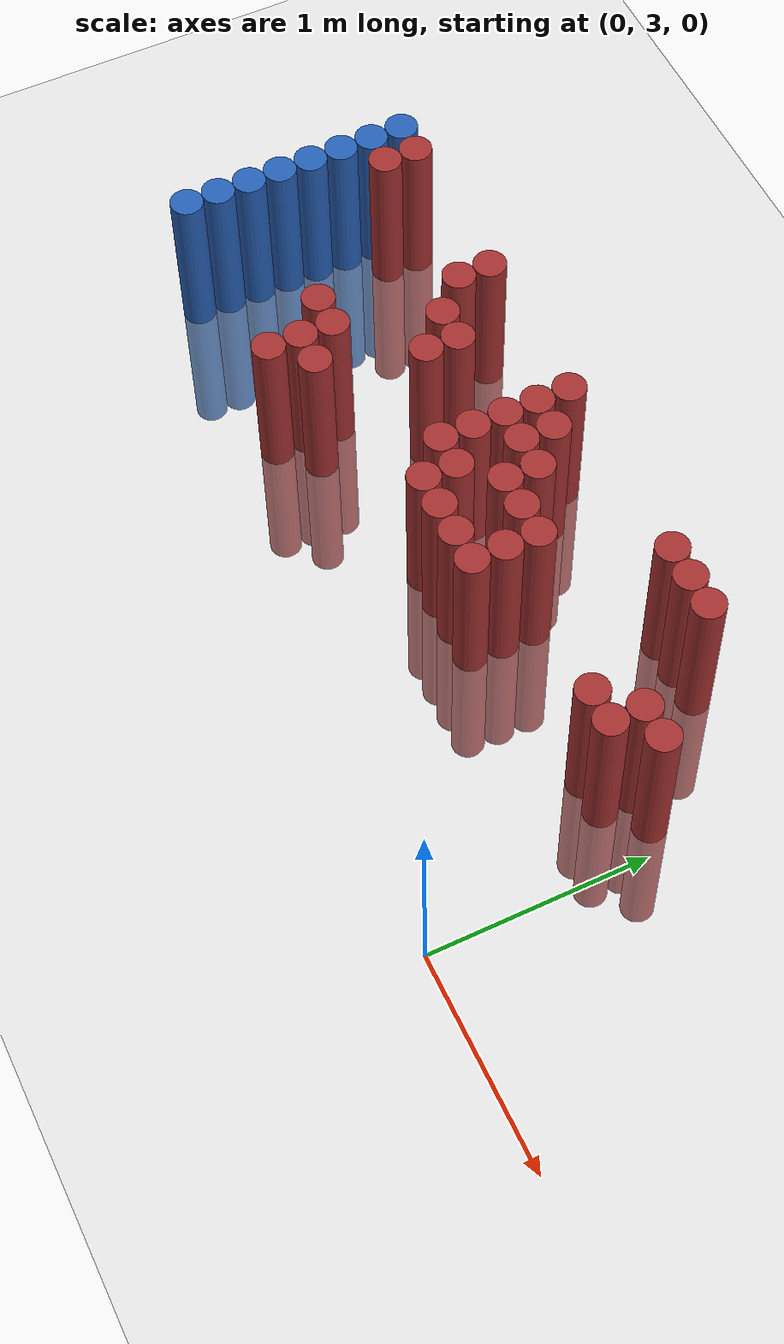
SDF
<sdf version="1.6">
 <world name="default">
  <model name="ground_plane">
   <static>1</static>
   <link name="link">
    <collision name="collision">
     <geometry><plane><normal>0 0 1</normal><size>100 100</size></plane></geometry>
     <surface><friction><ode><mu>100</mu><mu2>50</mu2></ode></friction></surface>
    </collision>
    <visual name="visual">
     <cast_shadows>0</cast_shadows>
     <geometry><plane><normal>0 0 1</normal><size>100 100</size></plane></geometry>
     <material>
      <script><uri>file://media/materials/scripts/gazebo.material</uri><name>Gazebo/Grey</name></script>
     </material>
    </visual>
   </link>
  </model>
  <model name="unit_cylinder_161">
   <static>1</static>
   <pose>-3.425000 3.475000 0.000000 0.000000 0.000000 0.000000</pose>
   <link name="link">
    <inertial>
     <mass>1</mass>
     <inertia><ixx>0.145833</ixx><ixy>0</ixy><ixz>0</ixz><iyy>0.145833</iyy><iyz>0</iyz><izz>0.125</izz></inertia>
    </inertial>
    <collision name="collision">
     <geometry><cylinder><radius>0.075000</radius><length>1.5</length></cylinder></geometry>
    </collision>
    <visual name="visual">
     <geometry><cylinder><radius>0.075000</radius><length>1.5</length></cylinder></geometry>
     <material>
      <ambient>0.152000 0.379000 0.720000 1</ambient>
      <diffuse>0.152000 0.379000 0.720000 1</diffuse>
     </material>
     <material>
      <script><name>Gazebo/Grey</name><uri>file://media/materials/scripts/gazebo.material</uri></script>
     </material>
    </visual>
   </link>
  </model>
  <model name="unit_cylinder_163">
   <static>1</static>
   <pose>-3.425000 3.625000 0.000000 0.000000 0.000000 0.000000</pose>
   <link name="link">
    <inertial>
     <mass>1</mass>
     <inertia><ixx>0.145833</ixx><ixy>0</ixy><ixz>0</ixz><iyy>0.145833</iyy><iyz>0</iyz><izz>0.125</izz></inertia>
    </inertial>
    <collision name="collision">
     <geometry><cylinder><radius>0.075000</radius><length>1.5</length></cylinder></geometry>
    </collision>
    <visual name="visual">
     <geometry><cylinder><radius>0.075000</radius><length>1.5</length></cylinder></geometry>
     <material>
      <ambient>0.152000 0.379000 0.720000 1</ambient>
      <diffuse>0.152000 0.379000 0.720000 1</diffuse>
     </material>
     <material>
      <script><name>Gazebo/Grey</name><uri>file://media/materials/scripts/gazebo.material</uri></script>
     </material>
    </visual>
   </link>
  </model>
  <model name="unit_cylinder_165">
   <static>1</static>
   <pose>-3.425000 3.775000 0.000000 0.000000 0.000000 0.000000</pose>
   <link name="link">
    <inertial>
     <mass>1</mass>
     <inertia><ixx>0.145833</ixx><ixy>0</ixy><ixz>0</ixz><iyy>0.145833</iyy><iyz>0</iyz><izz>0.125</izz></inertia>
    </inertial>
    <collision name="collision">
     <geometry><cylinder><radius>0.075000</radius><length>1.5</length></cylinder></geometry>
    </collision>
    <visual name="visual">
     <geometry><cylinder><radius>0.075000</radius><length>1.5</length></cylinder></geometry>
     <material>
      <ambient>0.152000 0.379000 0.720000 1</ambient>
      <diffuse>0.152000 0.379000 0.720000 1</diffuse>
     </material>
     <material>
      <script><name>Gazebo/Grey</name><uri>file://media/materials/scripts/gazebo.material</uri></script>
     </material>
    </visual>
   </link>
  </model>
  <model name="unit_cylinder_167">
   <static>1</static>
   <pose>-3.425000 3.925000 0.000000 0.000000 0.000000 0.000000</pose>
   <link name="link">
    <inertial>
     <mass>1</mass>
     <inertia><ixx>0.145833</ixx><ixy>0</ixy><ixz>0</ixz><iyy>0.145833</iyy><iyz>0</iyz><izz>0.125</izz></inertia>
    </inertial>
    <collision name="collision">
     <geometry><cylinder><radius>0.075000</radius><length>1.5</length></cylinder></geometry>
    </collision>
    <visual name="visual">
     <geometry><cylinder><radius>0.075000</radius><length>1.5</length></cylinder></geometry>
     <material>
      <ambient>0.152000 0.379000 0.720000 1</ambient>
      <diffuse>0.152000 0.379000 0.720000 1</diffuse>
     </material>
     <material>
      <script><name>Gazebo/Grey</name><uri>file://media/materials/scripts/gazebo.material</uri></script>
     </material>
    </visual>
   </link>
  </model>
  <model name="unit_cylinder_169">
   <static>1</static>
   <pose>-3.425000 4.075000 0.000000 0.000000 0.000000 0.000000</pose>
   <link name="link">
    <inertial>
     <mass>1</mass>
     <inertia><ixx>0.145833</ixx><ixy>0</ixy><ixz>0</ixz><iyy>0.145833</iyy><iyz>0</iyz><izz>0.125</izz></inertia>
    </inertial>
    <collision name="collision">
     <geometry><cylinder><radius>0.075000</radius><length>1.5</length></cylinder></geometry>
    </collision>
    <visual name="visual">
     <geometry><cylinder><radius>0.075000</radius><length>1.5</length></cylinder></geometry>
     <material>
      <ambient>0.152000 0.379000 0.720000 1</ambient>
      <diffuse>0.152000 0.379000 0.720000 1</diffuse>
     </material>
     <material>
      <script><name>Gazebo/Grey</name><uri>file://media/materials/scripts/gazebo.material</uri></script>
     </material>
    </visual>
   </link>
  </model>
  <model name="unit_cylinder_171">
   <static>1</static>
   <pose>-3.425000 4.225000 0.000000 0.000000 0.000000 0.000000</pose>
   <link name="link">
    <inertial>
     <mass>1</mass>
     <inertia><ixx>0.145833</ixx><ixy>0</ixy><ixz>0</ixz><iyy>0.145833</iyy><iyz>0</iyz><izz>0.125</izz></inertia>
    </inertial>
    <collision name="collision">
     <geometry><cylinder><radius>0.075000</radius><length>1.5</length></cylinder></geometry>
    </collision>
    <visual name="visual">
     <geometry><cylinder><radius>0.075000</radius><length>1.5</length></cylinder></geometry>
     <material>
      <ambient>0.152000 0.379000 0.720000 1</ambient>
      <diffuse>0.152000 0.379000 0.720000 1</diffuse>
     </material>
     <material>
      <script><name>Gazebo/Grey</name><uri>file://media/materials/scripts/gazebo.material</uri></script>
     </material>
    </visual>
   </link>
  </model>
  <model name="unit_cylinder_173">
   <static>1</static>
   <pose>-3.425000 4.375000 0.000000 0.000000 0.000000 0.000000</pose>
   <link name="link">
    <inertial>
     <mass>1</mass>
     <inertia><ixx>0.145833</ixx><ixy>0</ixy><ixz>0</ixz><iyy>0.145833</iyy><iyz>0</iyz><izz>0.125</izz></inertia>
    </inertial>
    <collision name="collision">
     <geometry><cylinder><radius>0.075000</radius><length>1.5</length></cylinder></geometry>
    </collision>
    <visual name="visual">
     <geometry><cylinder><radius>0.075000</radius><length>1.5</length></cylinder></geometry>
     <material>
      <ambient>0.152000 0.379000 0.720000 1</ambient>
      <diffuse>0.152000 0.379000 0.720000 1</diffuse>
     </material>
     <material>
      <script><name>Gazebo/Grey</name><uri>file://media/materials/scripts/gazebo.material</uri></script>
     </material>
    </visual>
   </link>
  </model>
  <model name="unit_cylinder_175">
   <static>1</static>
   <pose>-3.425000 4.525000 0.000000 0.000000 0.000000 0.000000</pose>
   <link name="link">
    <inertial>
     <mass>1</mass>
     <inertia><ixx>0.145833</ixx><ixy>0</ixy><ixz>0</ixz><iyy>0.145833</iyy><iyz>0</iyz><izz>0.125</izz></inertia>
    </inertial>
    <collision name="collision">
     <geometry><cylinder><radius>0.075000</radius><length>1.5</length></cylinder></geometry>
    </collision>
    <visual name="visual">
     <geometry><cylinder><radius>0.075000</radius><length>1.5</length></cylinder></geometry>
     <material>
      <ambient>0.152000 0.379000 0.720000 1</ambient>
      <diffuse>0.152000 0.379000 0.720000 1</diffuse>
     </material>
     <material>
      <script><name>Gazebo/Grey</name><uri>file://media/materials/scripts/gazebo.material</uri></script>
     </material>
    </visual>
   </link>
  </model>
  <model name="unit_cylinder_244">
   <static>1</static>
   <pose>-3.425000 3.475000 0.000000 0.000000 0.000000 0.000000</pose>
   <link name="link">
    <inertial>
     <mass>1</mass>
     <inertia><ixx>0.145833</ixx><ixy>0</ixy><ixz>0</ixz><iyy>0.145833</iyy><iyz>0</iyz><izz>0.125</izz></inertia>
    </inertial>
    <collision name="collision">
     <geometry><cylinder><radius>0.075000</radius><length>1.5</length></cylinder></geometry>
    </collision>
    <visual name="visual">
     <geometry><cylinder><radius>0.075000</radius><length>1.5</length></cylinder></geometry>
     <material>
      <ambient>0.152000 0.379000 0.720000 1</ambient>
      <diffuse>0.152000 0.379000 0.720000 1</diffuse>
     </material>
     <material>
      <script><name>Gazebo/Grey</name><uri>file://media/materials/scripts/gazebo.material</uri></script>
     </material>
    </visual>
   </link>
  </model>
  <model name="unit_cylinder_245">
   <static>1</static>
   <pose>-3.425000 3.625000 0.000000 0.000000 0.000000 0.000000</pose>
   <link name="link">
    <inertial>
     <mass>1</mass>
     <inertia><ixx>0.145833</ixx><ixy>0</ixy><ixz>0</ixz><iyy>0.145833</iyy><iyz>0</iyz><izz>0.125</izz></inertia>
    </inertial>
    <collision name="collision">
     <geometry><cylinder><radius>0.075000</radius><length>1.5</length></cylinder></geometry>
    </collision>
    <visual name="visual">
     <geometry><cylinder><radius>0.075000</radius><length>1.5</length></cylinder></geometry>
     <material>
      <ambient>0.152000 0.379000 0.720000 1</ambient>
      <diffuse>0.152000 0.379000 0.720000 1</diffuse>
     </material>
     <material>
      <script><name>Gazebo/Grey</name><uri>file://media/materials/scripts/gazebo.material</uri></script>
     </material>
    </visual>
   </link>
  </model>
  <model name="unit_cylinder_246">
   <static>1</static>
   <pose>-3.425000 3.775000 0.000000 0.000000 0.000000 0.000000</pose>
   <link name="link">
    <inertial>
     <mass>1</mass>
     <inertia><ixx>0.145833</ixx><ixy>0</ixy><ixz>0</ixz><iyy>0.145833</iyy><iyz>0</iyz><izz>0.125</izz></inertia>
    </inertial>
    <collision name="collision">
     <geometry><cylinder><radius>0.075000</radius><length>1.5</length></cylinder></geometry>
    </collision>
    <visual name="visual">
     <geometry><cylinder><radius>0.075000</radius><length>1.5</length></cylinder></geometry>
     <material>
      <ambient>0.152000 0.379000 0.720000 1</ambient>
      <diffuse>0.152000 0.379000 0.720000 1</diffuse>
     </material>
     <material>
      <script><name>Gazebo/Grey</name><uri>file://media/materials/scripts/gazebo.material</uri></script>
     </material>
    </visual>
   </link>
  </model>
  <model name="unit_cylinder_247">
   <static>1</static>
   <pose>-3.425000 3.925000 0.000000 0.000000 0.000000 0.000000</pose>
   <link name="link">
    <inertial>
     <mass>1</mass>
     <inertia><ixx>0.145833</ixx><ixy>0</ixy><ixz>0</ixz><iyy>0.145833</iyy><iyz>0</iyz><izz>0.125</izz></inertia>
    </inertial>
    <collision name="collision">
     <geometry><cylinder><radius>0.075000</radius><length>1.5</length></cylinder></geometry>
    </collision>
    <visual name="visual">
     <geometry><cylinder><radius>0.075000</radius><length>1.5</length></cylinder></geometry>
     <material>
      <ambient>0.152000 0.379000 0.720000 1</ambient>
      <diffuse>0.152000 0.379000 0.720000 1</diffuse>
     </material>
     <material>
      <script><name>Gazebo/Grey</name><uri>file://media/materials/scripts/gazebo.material</uri></script>
     </material>
    </visual>
   </link>
  </model>
  <model name="unit_cylinder_248">
   <static>1</static>
   <pose>-3.425000 4.075000 0.000000 0.000000 0.000000 0.000000</pose>
   <link name="link">
    <inertial>
     <mass>1</mass>
     <inertia><ixx>0.145833</ixx><ixy>0</ixy><ixz>0</ixz><iyy>0.145833</iyy><iyz>0</iyz><izz>0.125</izz></inertia>
    </inertial>
    <collision name="collision">
     <geometry><cylinder><radius>0.075000</radius><length>1.5</length></cylinder></geometry>
    </collision>
    <visual name="visual">
     <geometry><cylinder><radius>0.075000</radius><length>1.5</length></cylinder></geometry>
     <material>
      <ambient>0.152000 0.379000 0.720000 1</ambient>
      <diffuse>0.152000 0.379000 0.720000 1</diffuse>
     </material>
     <material>
      <script><name>Gazebo/Grey</name><uri>file://media/materials/scripts/gazebo.material</uri></script>
     </material>
    </visual>
   </link>
  </model>
  <model name="unit_cylinder_249">
   <static>1</static>
   <pose>-3.425000 4.225000 0.000000 0.000000 0.000000 0.000000</pose>
   <link name="link">
    <inertial>
     <mass>1</mass>
     <inertia><ixx>0.145833</ixx><ixy>0</ixy><ixz>0</ixz><iyy>0.145833</iyy><iyz>0</iyz><izz>0.125</izz></inertia>
    </inertial>
    <collision name="collision">
     <geometry><cylinder><radius>0.075000</radius><length>1.5</length></cylinder></geometry>
    </collision>
    <visual name="visual">
     <geometry><cylinder><radius>0.075000</radius><length>1.5</length></cylinder></geometry>
     <material>
      <ambient>0.152000 0.379000 0.720000 1</ambient>
      <diffuse>0.152000 0.379000 0.720000 1</diffuse>
     </material>
     <material>
      <script><name>Gazebo/Grey</name><uri>file://media/materials/scripts/gazebo.material</uri></script>
     </material>
    </visual>
   </link>
  </model>
  <model name="unit_cylinder_250">
   <static>1</static>
   <pose>-3.425000 4.375000 0.000000 0.000000 0.000000 0.000000</pose>
   <link name="link">
    <inertial>
     <mass>1</mass>
     <inertia><ixx>0.145833</ixx><ixy>0</ixy><ixz>0</ixz><iyy>0.145833</iyy><iyz>0</iyz><izz>0.125</izz></inertia>
    </inertial>
    <collision name="collision">
     <geometry><cylinder><radius>0.075000</radius><length>1.5</length></cylinder></geometry>
    </collision>
    <visual name="visual">
     <geometry><cylinder><radius>0.075000</radius><length>1.5</length></cylinder></geometry>
     <material>
      <ambient>0.152000 0.379000 0.720000 1</ambient>
      <diffuse>0.152000 0.379000 0.720000 1</diffuse>
     </material>
     <material>
      <script><name>Gazebo/Grey</name><uri>file://media/materials/scripts/gazebo.material</uri></script>
     </material>
    </visual>
   </link>
  </model>
  <model name="unit_cylinder_251">
   <static>1</static>
   <pose>-3.425000 4.525000 0.000000 0.000000 0.000000 0.000000</pose>
   <link name="link">
    <inertial>
     <mass>1</mass>
     <inertia><ixx>0.145833</ixx><ixy>0</ixy><ixz>0</ixz><iyy>0.145833</iyy><iyz>0</iyz><izz>0.125</izz></inertia>
    </inertial>
    <collision name="collision">
     <geometry><cylinder><radius>0.075000</radius><length>1.5</length></cylinder></geometry>
    </collision>
    <visual name="visual">
     <geometry><cylinder><radius>0.075000</radius><length>1.5</length></cylinder></geometry>
     <material>
      <ambient>0.152000 0.379000 0.720000 1</ambient>
      <diffuse>0.152000 0.379000 0.720000 1</diffuse>
     </material>
     <material>
      <script><name>Gazebo/Grey</name><uri>file://media/materials/scripts/gazebo.material</uri></script>
     </material>
    </visual>
   </link>
  </model>
  <model name="unit_cylinder_267">
   <static>1</static>
   <pose>-3.275000 4.375000 0.000000 0.000000 0.000000 0.000000</pose>
   <link name="link">
    <inertial>
     <mass>1</mass>
     <inertia><ixx>0.145833</ixx><ixy>0</ixy><ixz>0</ixz><iyy>0.145833</iyy><iyz>0</iyz><izz>0.125</izz></inertia>
    </inertial>
    <collision name="collision">
     <geometry><cylinder><radius>0.075000</radius><length>1.5</length></cylinder></geometry>
    </collision>
    <visual name="visual">
     <geometry><cylinder><radius>0.075000</radius><length>1.5</length></cylinder></geometry>
     <material>
      <ambient>0.648000 0.192000 0.192000 1</ambient>
      <diffuse>0.648000 0.192000 0.192000 1</diffuse>
     </material>
     <material>
      <script><name>Gazebo/Grey</name><uri>file://media/materials/scripts/gazebo.material</uri></script>
     </material>
    </visual>
   </link>
  </model>
  <model name="unit_cylinder_268">
   <static>1</static>
   <pose>-3.275000 4.525000 0.000000 0.000000 0.000000 0.000000</pose>
   <link name="link">
    <inertial>
     <mass>1</mass>
     <inertia><ixx>0.145833</ixx><ixy>0</ixy><ixz>0</ixz><iyy>0.145833</iyy><iyz>0</iyz><izz>0.125</izz></inertia>
    </inertial>
    <collision name="collision">
     <geometry><cylinder><radius>0.075000</radius><length>1.5</length></cylinder></geometry>
    </collision>
    <visual name="visual">
     <geometry><cylinder><radius>0.075000</radius><length>1.5</length></cylinder></geometry>
     <material>
      <ambient>0.648000 0.192000 0.192000 1</ambient>
      <diffuse>0.648000 0.192000 0.192000 1</diffuse>
     </material>
     <material>
      <script><name>Gazebo/Grey</name><uri>file://media/materials/scripts/gazebo.material</uri></script>
     </material>
    </visual>
   </link>
  </model>
  <model name="unit_cylinder_300">
   <static>1</static>
   <pose>-2.675000 3.775000 0.000000 0.000000 0.000000 0.000000</pose>
   <link name="link">
    <inertial>
     <mass>1</mass>
     <inertia><ixx>0.145833</ixx><ixy>0</ixy><ixz>0</ixz><iyy>0.145833</iyy><iyz>0</iyz><izz>0.125</izz></inertia>
    </inertial>
    <collision name="collision">
     <geometry><cylinder><radius>0.075000</radius><length>1.5</length></cylinder></geometry>
    </collision>
    <visual name="visual">
     <geometry><cylinder><radius>0.075000</radius><length>1.5</length></cylinder></geometry>
     <material>
      <ambient>0.648000 0.192000 0.192000 1</ambient>
      <diffuse>0.648000 0.192000 0.192000 1</diffuse>
     </material>
     <material>
      <script><name>Gazebo/Grey</name><uri>file://media/materials/scripts/gazebo.material</uri></script>
     </material>
    </visual>
   </link>
  </model>
  <model name="unit_cylinder_308">
   <static>1</static>
   <pose>-2.525000 3.475000 0.000000 0.000000 0.000000 0.000000</pose>
   <link name="link">
    <inertial>
     <mass>1</mass>
     <inertia><ixx>0.145833</ixx><ixy>0</ixy><ixz>0</ixz><iyy>0.145833</iyy><iyz>0</iyz><izz>0.125</izz></inertia>
    </inertial>
    <collision name="collision">
     <geometry><cylinder><radius>0.075000</radius><length>1.5</length></cylinder></geometry>
    </collision>
    <visual name="visual">
     <geometry><cylinder><radius>0.075000</radius><length>1.5</length></cylinder></geometry>
     <material>
      <ambient>0.648000 0.192000 0.192000 1</ambient>
      <diffuse>0.648000 0.192000 0.192000 1</diffuse>
     </material>
     <material>
      <script><name>Gazebo/Grey</name><uri>file://media/materials/scripts/gazebo.material</uri></script>
     </material>
    </visual>
   </link>
  </model>
  <model name="unit_cylinder_309">
   <static>1</static>
   <pose>-2.525000 3.625000 0.000000 0.000000 0.000000 0.000000</pose>
   <link name="link">
    <inertial>
     <mass>1</mass>
     <inertia><ixx>0.145833</ixx><ixy>0</ixy><ixz>0</ixz><iyy>0.145833</iyy><iyz>0</iyz><izz>0.125</izz></inertia>
    </inertial>
    <collision name="collision">
     <geometry><cylinder><radius>0.075000</radius><length>1.5</length></cylinder></geometry>
    </collision>
    <visual name="visual">
     <geometry><cylinder><radius>0.075000</radius><length>1.5</length></cylinder></geometry>
     <material>
      <ambient>0.648000 0.192000 0.192000 1</ambient>
      <diffuse>0.648000 0.192000 0.192000 1</diffuse>
     </material>
     <material>
      <script><name>Gazebo/Grey</name><uri>file://media/materials/scripts/gazebo.material</uri></script>
     </material>
    </visual>
   </link>
  </model>
  <model name="unit_cylinder_310">
   <static>1</static>
   <pose>-2.525000 3.775000 0.000000 0.000000 0.000000 0.000000</pose>
   <link name="link">
    <inertial>
     <mass>1</mass>
     <inertia><ixx>0.145833</ixx><ixy>0</ixy><ixz>0</ixz><iyy>0.145833</iyy><iyz>0</iyz><izz>0.125</izz></inertia>
    </inertial>
    <collision name="collision">
     <geometry><cylinder><radius>0.075000</radius><length>1.5</length></cylinder></geometry>
    </collision>
    <visual name="visual">
     <geometry><cylinder><radius>0.075000</radius><length>1.5</length></cylinder></geometry>
     <material>
      <ambient>0.648000 0.192000 0.192000 1</ambient>
      <diffuse>0.648000 0.192000 0.192000 1</diffuse>
     </material>
     <material>
      <script><name>Gazebo/Grey</name><uri>file://media/materials/scripts/gazebo.material</uri></script>
     </material>
    </visual>
   </link>
  </model>
  <model name="unit_cylinder_311">
   <static>1</static>
   <pose>-2.525000 4.375000 0.000000 0.000000 0.000000 0.000000</pose>
   <link name="link">
    <inertial>
     <mass>1</mass>
     <inertia><ixx>0.145833</ixx><ixy>0</ixy><ixz>0</ixz><iyy>0.145833</iyy><iyz>0</iyz><izz>0.125</izz></inertia>
    </inertial>
    <collision name="collision">
     <geometry><cylinder><radius>0.075000</radius><length>1.5</length></cylinder></geometry>
    </collision>
    <visual name="visual">
     <geometry><cylinder><radius>0.075000</radius><length>1.5</length></cylinder></geometry>
     <material>
      <ambient>0.648000 0.192000 0.192000 1</ambient>
      <diffuse>0.648000 0.192000 0.192000 1</diffuse>
     </material>
     <material>
      <script><name>Gazebo/Grey</name><uri>file://media/materials/scripts/gazebo.material</uri></script>
     </material>
    </visual>
   </link>
  </model>
  <model name="unit_cylinder_312">
   <static>1</static>
   <pose>-2.525000 4.525000 0.000000 0.000000 0.000000 0.000000</pose>
   <link name="link">
    <inertial>
     <mass>1</mass>
     <inertia><ixx>0.145833</ixx><ixy>0</ixy><ixz>0</ixz><iyy>0.145833</iyy><iyz>0</iyz><izz>0.125</izz></inertia>
    </inertial>
    <collision name="collision">
     <geometry><cylinder><radius>0.075000</radius><length>1.5</length></cylinder></geometry>
    </collision>
    <visual name="visual">
     <geometry><cylinder><radius>0.075000</radius><length>1.5</length></cylinder></geometry>
     <material>
      <ambient>0.648000 0.192000 0.192000 1</ambient>
      <diffuse>0.648000 0.192000 0.192000 1</diffuse>
     </material>
     <material>
      <script><name>Gazebo/Grey</name><uri>file://media/materials/scripts/gazebo.material</uri></script>
     </material>
    </visual>
   </link>
  </model>
  <model name="unit_cylinder_316">
   <static>1</static>
   <pose>-2.375000 3.625000 0.000000 0.000000 0.000000 0.000000</pose>
   <link name="link">
    <inertial>
     <mass>1</mass>
     <inertia><ixx>0.145833</ixx><ixy>0</ixy><ixz>0</ixz><iyy>0.145833</iyy><iyz>0</iyz><izz>0.125</izz></inertia>
    </inertial>
    <collision name="collision">
     <geometry><cylinder><radius>0.075000</radius><length>1.5</length></cylinder></geometry>
    </collision>
    <visual name="visual">
     <geometry><cylinder><radius>0.075000</radius><length>1.5</length></cylinder></geometry>
     <material>
      <ambient>0.648000 0.192000 0.192000 1</ambient>
      <diffuse>0.648000 0.192000 0.192000 1</diffuse>
     </material>
     <material>
      <script><name>Gazebo/Grey</name><uri>file://media/materials/scripts/gazebo.material</uri></script>
     </material>
    </visual>
   </link>
  </model>
  <model name="unit_cylinder_317">
   <static>1</static>
   <pose>-2.375000 4.225000 0.000000 0.000000 0.000000 0.000000</pose>
   <link name="link">
    <inertial>
     <mass>1</mass>
     <inertia><ixx>0.145833</ixx><ixy>0</ixy><ixz>0</ixz><iyy>0.145833</iyy><iyz>0</iyz><izz>0.125</izz></inertia>
    </inertial>
    <collision name="collision">
     <geometry><cylinder><radius>0.075000</radius><length>1.5</length></cylinder></geometry>
    </collision>
    <visual name="visual">
     <geometry><cylinder><radius>0.075000</radius><length>1.5</length></cylinder></geometry>
     <material>
      <ambient>0.648000 0.192000 0.192000 1</ambient>
      <diffuse>0.648000 0.192000 0.192000 1</diffuse>
     </material>
     <material>
      <script><name>Gazebo/Grey</name><uri>file://media/materials/scripts/gazebo.material</uri></script>
     </material>
    </visual>
   </link>
  </model>
  <model name="unit_cylinder_318">
   <static>1</static>
   <pose>-2.225000 4.075000 0.000000 0.000000 0.000000 0.000000</pose>
   <link name="link">
    <inertial>
     <mass>1</mass>
     <inertia><ixx>0.145833</ixx><ixy>0</ixy><ixz>0</ixz><iyy>0.145833</iyy><iyz>0</iyz><izz>0.125</izz></inertia>
    </inertial>
    <collision name="collision">
     <geometry><cylinder><radius>0.075000</radius><length>1.5</length></cylinder></geometry>
    </collision>
    <visual name="visual">
     <geometry><cylinder><radius>0.075000</radius><length>1.5</length></cylinder></geometry>
     <material>
      <ambient>0.648000 0.192000 0.192000 1</ambient>
      <diffuse>0.648000 0.192000 0.192000 1</diffuse>
     </material>
     <material>
      <script><name>Gazebo/Grey</name><uri>file://media/materials/scripts/gazebo.material</uri></script>
     </material>
    </visual>
   </link>
  </model>
  <model name="unit_cylinder_319">
   <static>1</static>
   <pose>-2.225000 4.225000 0.000000 0.000000 0.000000 0.000000</pose>
   <link name="link">
    <inertial>
     <mass>1</mass>
     <inertia><ixx>0.145833</ixx><ixy>0</ixy><ixz>0</ixz><iyy>0.145833</iyy><iyz>0</iyz><izz>0.125</izz></inertia>
    </inertial>
    <collision name="collision">
     <geometry><cylinder><radius>0.075000</radius><length>1.5</length></cylinder></geometry>
    </collision>
    <visual name="visual">
     <geometry><cylinder><radius>0.075000</radius><length>1.5</length></cylinder></geometry>
     <material>
      <ambient>0.648000 0.192000 0.192000 1</ambient>
      <diffuse>0.648000 0.192000 0.192000 1</diffuse>
     </material>
     <material>
      <script><name>Gazebo/Grey</name><uri>file://media/materials/scripts/gazebo.material</uri></script>
     </material>
    </visual>
   </link>
  </model>
  <model name="unit_cylinder_320">
   <static>1</static>
   <pose>-1.775000 3.925000 0.000000 0.000000 0.000000 0.000000</pose>
   <link name="link">
    <inertial>
     <mass>1</mass>
     <inertia><ixx>0.145833</ixx><ixy>0</ixy><ixz>0</ixz><iyy>0.145833</iyy><iyz>0</iyz><izz>0.125</izz></inertia>
    </inertial>
    <collision name="collision">
     <geometry><cylinder><radius>0.075000</radius><length>1.5</length></cylinder></geometry>
    </collision>
    <visual name="visual">
     <geometry><cylinder><radius>0.075000</radius><length>1.5</length></cylinder></geometry>
     <material>
      <ambient>0.648000 0.192000 0.192000 1</ambient>
      <diffuse>0.648000 0.192000 0.192000 1</diffuse>
     </material>
     <material>
      <script><name>Gazebo/Grey</name><uri>file://media/materials/scripts/gazebo.material</uri></script>
     </material>
    </visual>
   </link>
  </model>
  <model name="unit_cylinder_321">
   <static>1</static>
   <pose>-1.775000 4.075000 0.000000 0.000000 0.000000 0.000000</pose>
   <link name="link">
    <inertial>
     <mass>1</mass>
     <inertia><ixx>0.145833</ixx><ixy>0</ixy><ixz>0</ixz><iyy>0.145833</iyy><iyz>0</iyz><izz>0.125</izz></inertia>
    </inertial>
    <collision name="collision">
     <geometry><cylinder><radius>0.075000</radius><length>1.5</length></cylinder></geometry>
    </collision>
    <visual name="visual">
     <geometry><cylinder><radius>0.075000</radius><length>1.5</length></cylinder></geometry>
     <material>
      <ambient>0.648000 0.192000 0.192000 1</ambient>
      <diffuse>0.648000 0.192000 0.192000 1</diffuse>
     </material>
     <material>
      <script><name>Gazebo/Grey</name><uri>file://media/materials/scripts/gazebo.material</uri></script>
     </material>
    </visual>
   </link>
  </model>
  <model name="unit_cylinder_322">
   <static>1</static>
   <pose>-1.775000 4.225000 0.000000 0.000000 0.000000 0.000000</pose>
   <link name="link">
    <inertial>
     <mass>1</mass>
     <inertia><ixx>0.145833</ixx><ixy>0</ixy><ixz>0</ixz><iyy>0.145833</iyy><iyz>0</iyz><izz>0.125</izz></inertia>
    </inertial>
    <collision name="collision">
     <geometry><cylinder><radius>0.075000</radius><length>1.5</length></cylinder></geometry>
    </collision>
    <visual name="visual">
     <geometry><cylinder><radius>0.075000</radius><length>1.5</length></cylinder></geometry>
     <material>
      <ambient>0.648000 0.192000 0.192000 1</ambient>
      <diffuse>0.648000 0.192000 0.192000 1</diffuse>
     </material>
     <material>
      <script><name>Gazebo/Grey</name><uri>file://media/materials/scripts/gazebo.material</uri></script>
     </material>
    </visual>
   </link>
  </model>
  <model name="unit_cylinder_323">
   <static>1</static>
   <pose>-1.775000 4.375000 0.000000 0.000000 0.000000 0.000000</pose>
   <link name="link">
    <inertial>
     <mass>1</mass>
     <inertia><ixx>0.145833</ixx><ixy>0</ixy><ixz>0</ixz><iyy>0.145833</iyy><iyz>0</iyz><izz>0.125</izz></inertia>
    </inertial>
    <collision name="collision">
     <geometry><cylinder><radius>0.075000</radius><length>1.5</length></cylinder></geometry>
    </collision>
    <visual name="visual">
     <geometry><cylinder><radius>0.075000</radius><length>1.5</length></cylinder></geometry>
     <material>
      <ambient>0.648000 0.192000 0.192000 1</ambient>
      <diffuse>0.648000 0.192000 0.192000 1</diffuse>
     </material>
     <material>
      <script><name>Gazebo/Grey</name><uri>file://media/materials/scripts/gazebo.material</uri></script>
     </material>
    </visual>
   </link>
  </model>
  <model name="unit_cylinder_324">
   <static>1</static>
   <pose>-1.775000 4.525000 0.000000 0.000000 0.000000 0.000000</pose>
   <link name="link">
    <inertial>
     <mass>1</mass>
     <inertia><ixx>0.145833</ixx><ixy>0</ixy><ixz>0</ixz><iyy>0.145833</iyy><iyz>0</iyz><izz>0.125</izz></inertia>
    </inertial>
    <collision name="collision">
     <geometry><cylinder><radius>0.075000</radius><length>1.5</length></cylinder></geometry>
    </collision>
    <visual name="visual">
     <geometry><cylinder><radius>0.075000</radius><length>1.5</length></cylinder></geometry>
     <material>
      <ambient>0.648000 0.192000 0.192000 1</ambient>
      <diffuse>0.648000 0.192000 0.192000 1</diffuse>
     </material>
     <material>
      <script><name>Gazebo/Grey</name><uri>file://media/materials/scripts/gazebo.material</uri></script>
     </material>
    </visual>
   </link>
  </model>
  <model name="unit_cylinder_325">
   <static>1</static>
   <pose>-1.625000 3.775000 0.000000 0.000000 0.000000 0.000000</pose>
   <link name="link">
    <inertial>
     <mass>1</mass>
     <inertia><ixx>0.145833</ixx><ixy>0</ixy><ixz>0</ixz><iyy>0.145833</iyy><iyz>0</iyz><izz>0.125</izz></inertia>
    </inertial>
    <collision name="collision">
     <geometry><cylinder><radius>0.075000</radius><length>1.5</length></cylinder></geometry>
    </collision>
    <visual name="visual">
     <geometry><cylinder><radius>0.075000</radius><length>1.5</length></cylinder></geometry>
     <material>
      <ambient>0.648000 0.192000 0.192000 1</ambient>
      <diffuse>0.648000 0.192000 0.192000 1</diffuse>
     </material>
     <material>
      <script><name>Gazebo/Grey</name><uri>file://media/materials/scripts/gazebo.material</uri></script>
     </material>
    </visual>
   </link>
  </model>
  <model name="unit_cylinder_326">
   <static>1</static>
   <pose>-1.625000 3.925000 0.000000 0.000000 0.000000 0.000000</pose>
   <link name="link">
    <inertial>
     <mass>1</mass>
     <inertia><ixx>0.145833</ixx><ixy>0</ixy><ixz>0</ixz><iyy>0.145833</iyy><iyz>0</iyz><izz>0.125</izz></inertia>
    </inertial>
    <collision name="collision">
     <geometry><cylinder><radius>0.075000</radius><length>1.5</length></cylinder></geometry>
    </collision>
    <visual name="visual">
     <geometry><cylinder><radius>0.075000</radius><length>1.5</length></cylinder></geometry>
     <material>
      <ambient>0.648000 0.192000 0.192000 1</ambient>
      <diffuse>0.648000 0.192000 0.192000 1</diffuse>
     </material>
     <material>
      <script><name>Gazebo/Grey</name><uri>file://media/materials/scripts/gazebo.material</uri></script>
     </material>
    </visual>
   </link>
  </model>
  <model name="unit_cylinder_327">
   <static>1</static>
   <pose>-1.625000 4.225000 0.000000 0.000000 0.000000 0.000000</pose>
   <link name="link">
    <inertial>
     <mass>1</mass>
     <inertia><ixx>0.145833</ixx><ixy>0</ixy><ixz>0</ixz><iyy>0.145833</iyy><iyz>0</iyz><izz>0.125</izz></inertia>
    </inertial>
    <collision name="collision">
     <geometry><cylinder><radius>0.075000</radius><length>1.5</length></cylinder></geometry>
    </collision>
    <visual name="visual">
     <geometry><cylinder><radius>0.075000</radius><length>1.5</length></cylinder></geometry>
     <material>
      <ambient>0.648000 0.192000 0.192000 1</ambient>
      <diffuse>0.648000 0.192000 0.192000 1</diffuse>
     </material>
     <material>
      <script><name>Gazebo/Grey</name><uri>file://media/materials/scripts/gazebo.material</uri></script>
     </material>
    </visual>
   </link>
  </model>
  <model name="unit_cylinder_328">
   <static>1</static>
   <pose>-1.625000 4.375000 0.000000 0.000000 0.000000 0.000000</pose>
   <link name="link">
    <inertial>
     <mass>1</mass>
     <inertia><ixx>0.145833</ixx><ixy>0</ixy><ixz>0</ixz><iyy>0.145833</iyy><iyz>0</iyz><izz>0.125</izz></inertia>
    </inertial>
    <collision name="collision">
     <geometry><cylinder><radius>0.075000</radius><length>1.5</length></cylinder></geometry>
    </collision>
    <visual name="visual">
     <geometry><cylinder><radius>0.075000</radius><length>1.5</length></cylinder></geometry>
     <material>
      <ambient>0.648000 0.192000 0.192000 1</ambient>
      <diffuse>0.648000 0.192000 0.192000 1</diffuse>
     </material>
     <material>
      <script><name>Gazebo/Grey</name><uri>file://media/materials/scripts/gazebo.material</uri></script>
     </material>
    </visual>
   </link>
  </model>
  <model name="unit_cylinder_330">
   <static>1</static>
   <pose>-1.475000 3.775000 0.000000 0.000000 0.000000 0.000000</pose>
   <link name="link">
    <inertial>
     <mass>1</mass>
     <inertia><ixx>0.145833</ixx><ixy>0</ixy><ixz>0</ixz><iyy>0.145833</iyy><iyz>0</iyz><izz>0.125</izz></inertia>
    </inertial>
    <collision name="collision">
     <geometry><cylinder><radius>0.075000</radius><length>1.5</length></cylinder></geometry>
    </collision>
    <visual name="visual">
     <geometry><cylinder><radius>0.075000</radius><length>1.5</length></cylinder></geometry>
     <material>
      <ambient>0.648000 0.192000 0.192000 1</ambient>
      <diffuse>0.648000 0.192000 0.192000 1</diffuse>
     </material>
     <material>
      <script><name>Gazebo/Grey</name><uri>file://media/materials/scripts/gazebo.material</uri></script>
     </material>
    </visual>
   </link>
  </model>
  <model name="unit_cylinder_331">
   <static>1</static>
   <pose>-1.475000 4.075000 0.000000 0.000000 0.000000 0.000000</pose>
   <link name="link">
    <inertial>
     <mass>1</mass>
     <inertia><ixx>0.145833</ixx><ixy>0</ixy><ixz>0</ixz><iyy>0.145833</iyy><iyz>0</iyz><izz>0.125</izz></inertia>
    </inertial>
    <collision name="collision">
     <geometry><cylinder><radius>0.075000</radius><length>1.5</length></cylinder></geometry>
    </collision>
    <visual name="visual">
     <geometry><cylinder><radius>0.075000</radius><length>1.5</length></cylinder></geometry>
     <material>
      <ambient>0.648000 0.192000 0.192000 1</ambient>
      <diffuse>0.648000 0.192000 0.192000 1</diffuse>
     </material>
     <material>
      <script><name>Gazebo/Grey</name><uri>file://media/materials/scripts/gazebo.material</uri></script>
     </material>
    </visual>
   </link>
  </model>
  <model name="unit_cylinder_332">
   <static>1</static>
   <pose>-1.475000 4.225000 0.000000 0.000000 0.000000 0.000000</pose>
   <link name="link">
    <inertial>
     <mass>1</mass>
     <inertia><ixx>0.145833</ixx><ixy>0</ixy><ixz>0</ixz><iyy>0.145833</iyy><iyz>0</iyz><izz>0.125</izz></inertia>
    </inertial>
    <collision name="collision">
     <geometry><cylinder><radius>0.075000</radius><length>1.5</length></cylinder></geometry>
    </collision>
    <visual name="visual">
     <geometry><cylinder><radius>0.075000</radius><length>1.5</length></cylinder></geometry>
     <material>
      <ambient>0.648000 0.192000 0.192000 1</ambient>
      <diffuse>0.648000 0.192000 0.192000 1</diffuse>
     </material>
     <material>
      <script><name>Gazebo/Grey</name><uri>file://media/materials/scripts/gazebo.material</uri></script>
     </material>
    </visual>
   </link>
  </model>
  <model name="unit_cylinder_335">
   <static>1</static>
   <pose>-1.325000 3.775000 0.000000 0.000000 0.000000 0.000000</pose>
   <link name="link">
    <inertial>
     <mass>1</mass>
     <inertia><ixx>0.145833</ixx><ixy>0</ixy><ixz>0</ixz><iyy>0.145833</iyy><iyz>0</iyz><izz>0.125</izz></inertia>
    </inertial>
    <collision name="collision">
     <geometry><cylinder><radius>0.075000</radius><length>1.5</length></cylinder></geometry>
    </collision>
    <visual name="visual">
     <geometry><cylinder><radius>0.075000</radius><length>1.5</length></cylinder></geometry>
     <material>
      <ambient>0.648000 0.192000 0.192000 1</ambient>
      <diffuse>0.648000 0.192000 0.192000 1</diffuse>
     </material>
     <material>
      <script><name>Gazebo/Grey</name><uri>file://media/materials/scripts/gazebo.material</uri></script>
     </material>
    </visual>
   </link>
  </model>
  <model name="unit_cylinder_336">
   <static>1</static>
   <pose>-1.325000 4.075000 0.000000 0.000000 0.000000 0.000000</pose>
   <link name="link">
    <inertial>
     <mass>1</mass>
     <inertia><ixx>0.145833</ixx><ixy>0</ixy><ixz>0</ixz><iyy>0.145833</iyy><iyz>0</iyz><izz>0.125</izz></inertia>
    </inertial>
    <collision name="collision">
     <geometry><cylinder><radius>0.075000</radius><length>1.5</length></cylinder></geometry>
    </collision>
    <visual name="visual">
     <geometry><cylinder><radius>0.075000</radius><length>1.5</length></cylinder></geometry>
     <material>
      <ambient>0.648000 0.192000 0.192000 1</ambient>
      <diffuse>0.648000 0.192000 0.192000 1</diffuse>
     </material>
     <material>
      <script><name>Gazebo/Grey</name><uri>file://media/materials/scripts/gazebo.material</uri></script>
     </material>
    </visual>
   </link>
  </model>
  <model name="unit_cylinder_338">
   <static>1</static>
   <pose>-1.175000 3.775000 0.000000 0.000000 0.000000 0.000000</pose>
   <link name="link">
    <inertial>
     <mass>1</mass>
     <inertia><ixx>0.145833</ixx><ixy>0</ixy><ixz>0</ixz><iyy>0.145833</iyy><iyz>0</iyz><izz>0.125</izz></inertia>
    </inertial>
    <collision name="collision">
     <geometry><cylinder><radius>0.075000</radius><length>1.5</length></cylinder></geometry>
    </collision>
    <visual name="visual">
     <geometry><cylinder><radius>0.075000</radius><length>1.5</length></cylinder></geometry>
     <material>
      <ambient>0.648000 0.192000 0.192000 1</ambient>
      <diffuse>0.648000 0.192000 0.192000 1</diffuse>
     </material>
     <material>
      <script><name>Gazebo/Grey</name><uri>file://media/materials/scripts/gazebo.material</uri></script>
     </material>
    </visual>
   </link>
  </model>
  <model name="unit_cylinder_339">
   <static>1</static>
   <pose>-1.175000 3.925000 0.000000 0.000000 0.000000 0.000000</pose>
   <link name="link">
    <inertial>
     <mass>1</mass>
     <inertia><ixx>0.145833</ixx><ixy>0</ixy><ixz>0</ixz><iyy>0.145833</iyy><iyz>0</iyz><izz>0.125</izz></inertia>
    </inertial>
    <collision name="collision">
     <geometry><cylinder><radius>0.075000</radius><length>1.5</length></cylinder></geometry>
    </collision>
    <visual name="visual">
     <geometry><cylinder><radius>0.075000</radius><length>1.5</length></cylinder></geometry>
     <material>
      <ambient>0.648000 0.192000 0.192000 1</ambient>
      <diffuse>0.648000 0.192000 0.192000 1</diffuse>
     </material>
     <material>
      <script><name>Gazebo/Grey</name><uri>file://media/materials/scripts/gazebo.material</uri></script>
     </material>
    </visual>
   </link>
  </model>
  <model name="unit_cylinder_340">
   <static>1</static>
   <pose>-1.175000 4.075000 0.000000 0.000000 0.000000 0.000000</pose>
   <link name="link">
    <inertial>
     <mass>1</mass>
     <inertia><ixx>0.145833</ixx><ixy>0</ixy><ixz>0</ixz><iyy>0.145833</iyy><iyz>0</iyz><izz>0.125</izz></inertia>
    </inertial>
    <collision name="collision">
     <geometry><cylinder><radius>0.075000</radius><length>1.5</length></cylinder></geometry>
    </collision>
    <visual name="visual">
     <geometry><cylinder><radius>0.075000</radius><length>1.5</length></cylinder></geometry>
     <material>
      <ambient>0.648000 0.192000 0.192000 1</ambient>
      <diffuse>0.648000 0.192000 0.192000 1</diffuse>
     </material>
     <material>
      <script><name>Gazebo/Grey</name><uri>file://media/materials/scripts/gazebo.material</uri></script>
     </material>
    </visual>
   </link>
  </model>
  <model name="unit_cylinder_346">
   <static>1</static>
   <pose>-0.875000 4.525000 0.000000 0.000000 0.000000 0.000000</pose>
   <link name="link">
    <inertial>
     <mass>1</mass>
     <inertia><ixx>0.145833</ixx><ixy>0</ixy><ixz>0</ixz><iyy>0.145833</iyy><iyz>0</iyz><izz>0.125</izz></inertia>
    </inertial>
    <collision name="collision">
     <geometry><cylinder><radius>0.075000</radius><length>1.5</length></cylinder></geometry>
    </collision>
    <visual name="visual">
     <geometry><cylinder><radius>0.075000</radius><length>1.5</length></cylinder></geometry>
     <material>
      <ambient>0.648000 0.192000 0.192000 1</ambient>
      <diffuse>0.648000 0.192000 0.192000 1</diffuse>
     </material>
     <material>
      <script><name>Gazebo/Grey</name><uri>file://media/materials/scripts/gazebo.material</uri></script>
     </material>
    </visual>
   </link>
  </model>
  <model name="unit_cylinder_354">
   <static>1</static>
   <pose>-0.725000 4.525000 0.000000 0.000000 0.000000 0.000000</pose>
   <link name="link">
    <inertial>
     <mass>1</mass>
     <inertia><ixx>0.145833</ixx><ixy>0</ixy><ixz>0</ixz><iyy>0.145833</iyy><iyz>0</iyz><izz>0.125</izz></inertia>
    </inertial>
    <collision name="collision">
     <geometry><cylinder><radius>0.075000</radius><length>1.5</length></cylinder></geometry>
    </collision>
    <visual name="visual">
     <geometry><cylinder><radius>0.075000</radius><length>1.5</length></cylinder></geometry>
     <material>
      <ambient>0.648000 0.192000 0.192000 1</ambient>
      <diffuse>0.648000 0.192000 0.192000 1</diffuse>
     </material>
     <material>
      <script><name>Gazebo/Grey</name><uri>file://media/materials/scripts/gazebo.material</uri></script>
     </material>
    </visual>
   </link>
  </model>
  <model name="unit_cylinder_366">
   <static>1</static>
   <pose>-0.575000 4.525000 0.000000 0.000000 0.000000 0.000000</pose>
   <link name="link">
    <inertial>
     <mass>1</mass>
     <inertia><ixx>0.145833</ixx><ixy>0</ixy><ixz>0</ixz><iyy>0.145833</iyy><iyz>0</iyz><izz>0.125</izz></inertia>
    </inertial>
    <collision name="collision">
     <geometry><cylinder><radius>0.075000</radius><length>1.5</length></cylinder></geometry>
    </collision>
    <visual name="visual">
     <geometry><cylinder><radius>0.075000</radius><length>1.5</length></cylinder></geometry>
     <material>
      <ambient>0.648000 0.192000 0.192000 1</ambient>
      <diffuse>0.648000 0.192000 0.192000 1</diffuse>
     </material>
     <material>
      <script><name>Gazebo/Grey</name><uri>file://media/materials/scripts/gazebo.material</uri></script>
     </material>
    </visual>
   </link>
  </model>
  <model name="unit_cylinder_372">
   <static>1</static>
   <pose>-0.425000 3.925000 0.000000 0.000000 0.000000 0.000000</pose>
   <link name="link">
    <inertial>
     <mass>1</mass>
     <inertia><ixx>0.145833</ixx><ixy>0</ixy><ixz>0</ixz><iyy>0.145833</iyy><iyz>0</iyz><izz>0.125</izz></inertia>
    </inertial>
    <collision name="collision">
     <geometry><cylinder><radius>0.075000</radius><length>1.5</length></cylinder></geometry>
    </collision>
    <visual name="visual">
     <geometry><cylinder><radius>0.075000</radius><length>1.5</length></cylinder></geometry>
     <material>
      <ambient>0.648000 0.192000 0.192000 1</ambient>
      <diffuse>0.648000 0.192000 0.192000 1</diffuse>
     </material>
     <material>
      <script><name>Gazebo/Grey</name><uri>file://media/materials/scripts/gazebo.material</uri></script>
     </material>
    </visual>
   </link>
  </model>
  <model name="unit_cylinder_376">
   <static>1</static>
   <pose>-0.275000 3.925000 0.000000 0.000000 0.000000 0.000000</pose>
   <link name="link">
    <inertial>
     <mass>1</mass>
     <inertia><ixx>0.145833</ixx><ixy>0</ixy><ixz>0</ixz><iyy>0.145833</iyy><iyz>0</iyz><izz>0.125</izz></inertia>
    </inertial>
    <collision name="collision">
     <geometry><cylinder><radius>0.075000</radius><length>1.5</length></cylinder></geometry>
    </collision>
    <visual name="visual">
     <geometry><cylinder><radius>0.075000</radius><length>1.5</length></cylinder></geometry>
     <material>
      <ambient>0.648000 0.192000 0.192000 1</ambient>
      <diffuse>0.648000 0.192000 0.192000 1</diffuse>
     </material>
     <material>
      <script><name>Gazebo/Grey</name><uri>file://media/materials/scripts/gazebo.material</uri></script>
     </material>
    </visual>
   </link>
  </model>
  <model name="unit_cylinder_377">
   <static>1</static>
   <pose>-0.275000 4.075000 0.000000 0.000000 0.000000 0.000000</pose>
   <link name="link">
    <inertial>
     <mass>1</mass>
     <inertia><ixx>0.145833</ixx><ixy>0</ixy><ixz>0</ixz><iyy>0.145833</iyy><iyz>0</iyz><izz>0.125</izz></inertia>
    </inertial>
    <collision name="collision">
     <geometry><cylinder><radius>0.075000</radius><length>1.5</length></cylinder></geometry>
    </collision>
    <visual name="visual">
     <geometry><cylinder><radius>0.075000</radius><length>1.5</length></cylinder></geometry>
     <material>
      <ambient>0.648000 0.192000 0.192000 1</ambient>
      <diffuse>0.648000 0.192000 0.192000 1</diffuse>
     </material>
     <material>
      <script><name>Gazebo/Grey</name><uri>file://media/materials/scripts/gazebo.material</uri></script>
     </material>
    </visual>
   </link>
  </model>
  <model name="unit_cylinder_381">
   <static>1</static>
   <pose>-0.125000 4.075000 0.000000 0.000000 0.000000 0.000000</pose>
   <link name="link">
    <inertial>
     <mass>1</mass>
     <inertia><ixx>0.145833</ixx><ixy>0</ixy><ixz>0</ixz><iyy>0.145833</iyy><iyz>0</iyz><izz>0.125</izz></inertia>
    </inertial>
    <collision name="collision">
     <geometry><cylinder><radius>0.075000</radius><length>1.5</length></cylinder></geometry>
    </collision>
    <visual name="visual">
     <geometry><cylinder><radius>0.075000</radius><length>1.5</length></cylinder></geometry>
     <material>
      <ambient>0.648000 0.192000 0.192000 1</ambient>
      <diffuse>0.648000 0.192000 0.192000 1</diffuse>
     </material>
     <material>
      <script><name>Gazebo/Grey</name><uri>file://media/materials/scripts/gazebo.material</uri></script>
     </material>
    </visual>
   </link>
  </model>
 </world>
</sdf>
